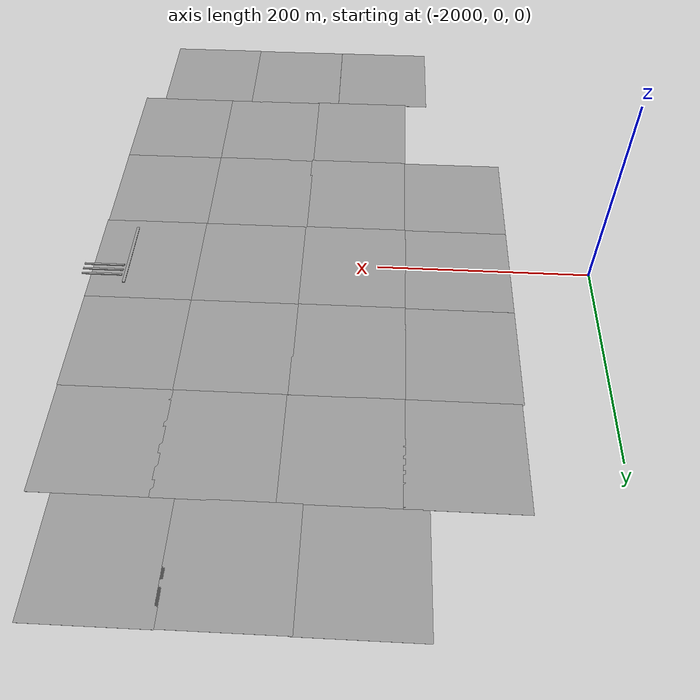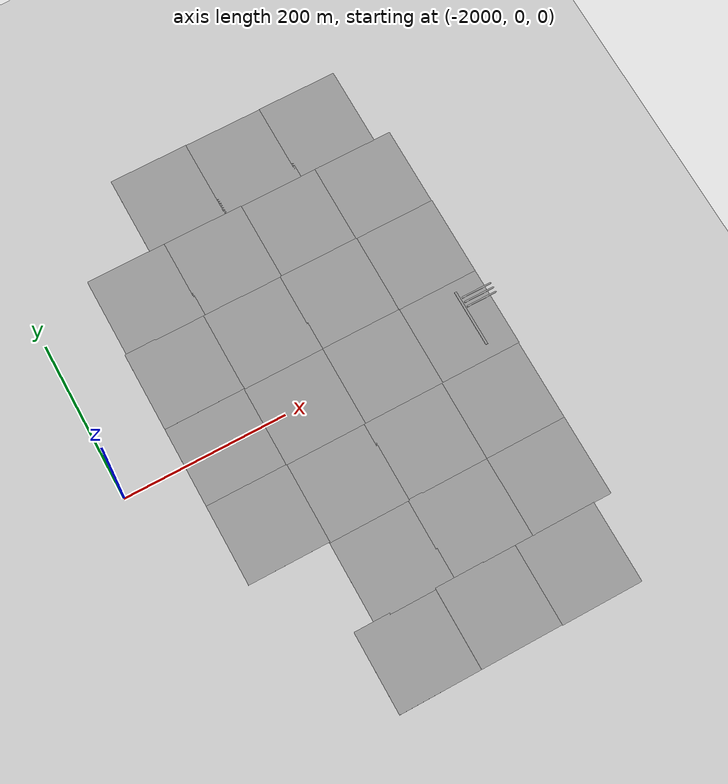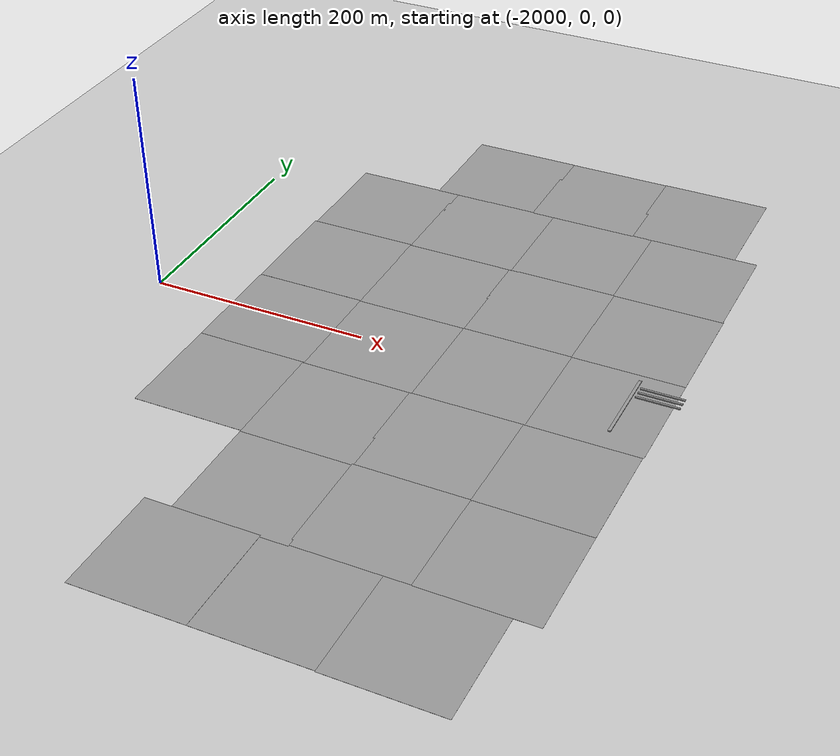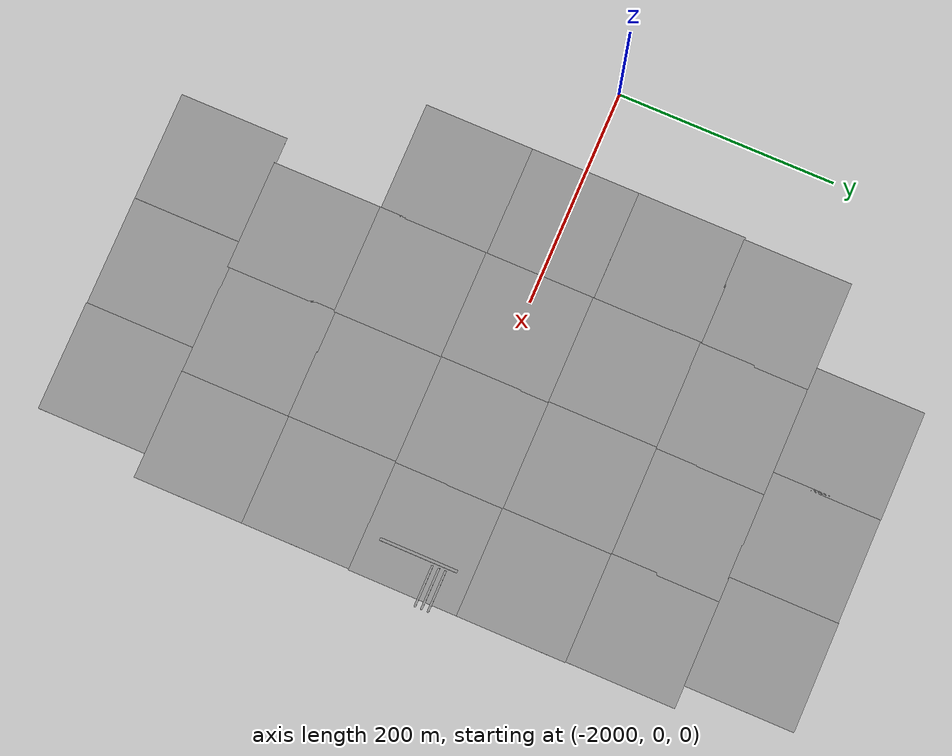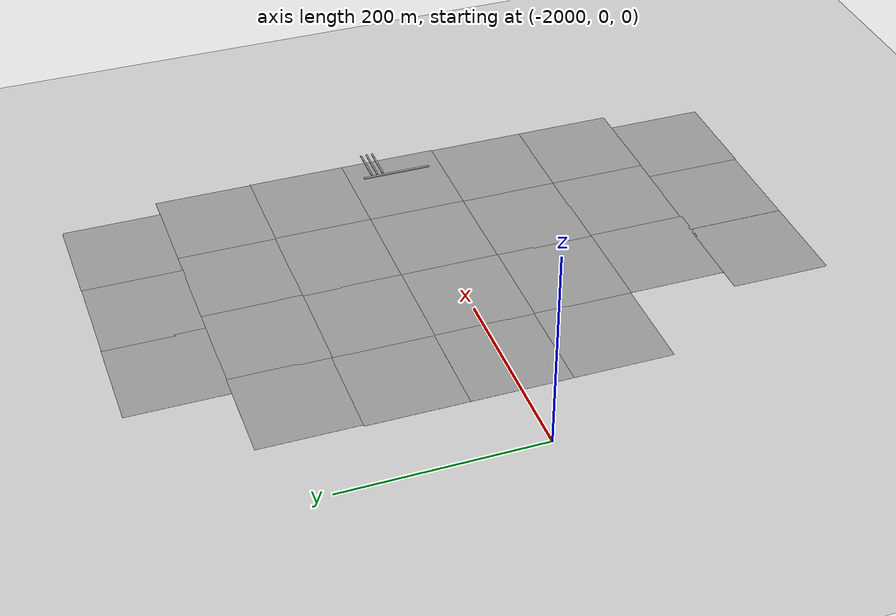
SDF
<sdf version="1.7">
 <world name="default">
  <model name="ground_plane">
   <static>1</static>
   <link name="link">
    <collision name="collision">
     <geometry><plane><normal>0 0 1</normal><size>100 100</size></plane></geometry>
     <surface><friction><ode><mu>100</mu><mu2>50</mu2></ode></friction></surface>
    </collision>
    <visual name="visual">
     <cast_shadows>0</cast_shadows>
     <geometry><plane><normal>0 0 1</normal><size>100 100</size></plane></geometry>
     <material>
      <script><uri>file://media/materials/scripts/gazebo.material</uri><name>Gazebo/Grey</name></script>
     </material>
    </visual>
   </link>
  </model>
  <model name="ground_plane_164">
   <static>1</static>
   <link name="link">
    <collision name="collision">
     <geometry><plane><normal>0 0 1</normal><size>100 100</size></plane></geometry>
     <surface>
      <contact><collide_bitmask>65535</collide_bitmask></contact>
      <friction><ode><mu>100</mu><mu2>50</mu2></ode></friction>
     </surface>
    </collision>
    <visual name="visual">
     <cast_shadows>0</cast_shadows>
     <geometry><plane><normal>0 0 1</normal><size>100 100</size></plane></geometry>
     <material>
      <script><uri>file://media/materials/scripts/gazebo.material</uri><name>Gazebo/Grey</name></script>
     </material>
    </visual>
   </link>
   <pose>-1578.55 198.146 0 0 -0 0</pose>
  </model>
  <model name="ground_plane_165">
   <static>1</static>
   <link name="link">
    <collision name="collision">
     <geometry><plane><normal>0 0 1</normal><size>100 100</size></plane></geometry>
     <surface>
      <contact><collide_bitmask>65535</collide_bitmask></contact>
      <friction><ode><mu>100</mu><mu2>50</mu2></ode></friction>
     </surface>
    </collision>
    <visual name="visual">
     <cast_shadows>0</cast_shadows>
     <geometry><plane><normal>0 0 1</normal><size>100 100</size></plane></geometry>
     <material>
      <script><uri>file://media/materials/scripts/gazebo.material</uri><name>Gazebo/Grey</name></script>
     </material>
    </visual>
   </link>
   <pose>-1577.94 98.2692 0 0 -0 0</pose>
  </model>
  <model name="ground_plane_166">
   <static>1</static>
   <link name="link">
    <collision name="collision">
     <geometry><plane><normal>0 0 1</normal><size>100 100</size></plane></geometry>
     <surface>
      <contact><collide_bitmask>65535</collide_bitmask></contact>
      <friction><ode><mu>100</mu><mu2>50</mu2></ode></friction>
     </surface>
    </collision>
    <visual name="visual">
     <cast_shadows>0</cast_shadows>
     <geometry><plane><normal>0 0 1</normal><size>100 100</size></plane></geometry>
     <material>
      <script><uri>file://media/materials/scripts/gazebo.material</uri><name>Gazebo/Grey</name></script>
     </material>
    </visual>
   </link>
   <pose>-1577.94 -1.23839 0 0 -0 0</pose>
  </model>
  <model name="ground_plane_167">
   <static>1</static>
   <link name="link">
    <collision name="collision">
     <geometry><plane><normal>0 0 1</normal><size>100 100</size></plane></geometry>
     <surface>
      <contact><collide_bitmask>65535</collide_bitmask></contact>
      <friction><ode><mu>100</mu><mu2>50</mu2></ode></friction>
     </surface>
    </collision>
    <visual name="visual">
     <cast_shadows>0</cast_shadows>
     <geometry><plane><normal>0 0 1</normal><size>100 100</size></plane></geometry>
     <material>
      <script><uri>file://media/materials/scripts/gazebo.material</uri><name>Gazebo/Grey</name></script>
     </material>
    </visual>
   </link>
   <pose>-1578.82 -100.961 0 0 -0 0</pose>
  </model>
  <model name="ground_plane_168">
   <static>1</static>
   <link name="link">
    <collision name="collision">
     <geometry><plane><normal>0 0 1</normal><size>100 100</size></plane></geometry>
     <surface>
      <contact><collide_bitmask>65535</collide_bitmask></contact>
      <friction><ode><mu>100</mu><mu2>50</mu2></ode></friction>
     </surface>
    </collision>
    <visual name="visual">
     <cast_shadows>0</cast_shadows>
     <geometry><plane><normal>0 0 1</normal><size>100 100</size></plane></geometry>
     <material>
      <script><uri>file://media/materials/scripts/gazebo.material</uri><name>Gazebo/Grey</name></script>
     </material>
    </visual>
   </link>
   <pose>-1578.82 -200.5 0 0 -0 0</pose>
  </model>
  <model name="ground_plane_169">
   <static>1</static>
   <link name="link">
    <collision name="collision">
     <geometry><plane><normal>0 0 1</normal><size>100 100</size></plane></geometry>
     <surface>
      <contact><collide_bitmask>65535</collide_bitmask></contact>
      <friction><ode><mu>100</mu><mu2>50</mu2></ode></friction>
     </surface>
    </collision>
    <visual name="visual">
     <cast_shadows>0</cast_shadows>
     <geometry><plane><normal>0 0 1</normal><size>100 100</size></plane></geometry>
     <material>
      <script><uri>file://media/materials/scripts/gazebo.material</uri><name>Gazebo/Grey</name></script>
     </material>
    </visual>
   </link>
   <pose>-1676.42 198.193 0 0 -0 0</pose>
  </model>
  <model name="ground_plane_170">
   <static>1</static>
   <link name="link">
    <collision name="collision">
     <geometry><plane><normal>0 0 1</normal><size>100 100</size></plane></geometry>
     <surface>
      <contact><collide_bitmask>65535</collide_bitmask></contact>
      <friction><ode><mu>100</mu><mu2>50</mu2></ode></friction>
     </surface>
    </collision>
    <visual name="visual">
     <cast_shadows>0</cast_shadows>
     <geometry><plane><normal>0 0 1</normal><size>100 100</size></plane></geometry>
     <material>
      <script><uri>file://media/materials/scripts/gazebo.material</uri><name>Gazebo/Grey</name></script>
     </material>
    </visual>
   </link>
   <pose>-1677.63 98.7032 0 0 -0 0</pose>
  </model>
  <model name="ground_plane_171">
   <static>1</static>
   <link name="link">
    <collision name="collision">
     <geometry><plane><normal>0 0 1</normal><size>100 100</size></plane></geometry>
     <surface>
      <contact><collide_bitmask>65535</collide_bitmask></contact>
      <friction><ode><mu>100</mu><mu2>50</mu2></ode></friction>
     </surface>
    </collision>
    <visual name="visual">
     <cast_shadows>0</cast_shadows>
     <geometry><plane><normal>0 0 1</normal><size>100 100</size></plane></geometry>
     <material>
      <script><uri>file://media/materials/scripts/gazebo.material</uri><name>Gazebo/Grey</name></script>
     </material>
    </visual>
   </link>
   <pose>-1677.39 -1.24015 0 0 -0 0</pose>
  </model>
  <model name="ground_plane_172">
   <static>1</static>
   <link name="link">
    <collision name="collision">
     <geometry><plane><normal>0 0 1</normal><size>100 100</size></plane></geometry>
     <surface>
      <contact><collide_bitmask>65535</collide_bitmask></contact>
      <friction><ode><mu>100</mu><mu2>50</mu2></ode></friction>
     </surface>
    </collision>
    <visual name="visual">
     <cast_shadows>0</cast_shadows>
     <geometry><plane><normal>0 0 1</normal><size>100 100</size></plane></geometry>
     <material>
      <script><uri>file://media/materials/scripts/gazebo.material</uri><name>Gazebo/Grey</name></script>
     </material>
    </visual>
   </link>
   <pose>-1678.6 -101.059 0 0 -0 0</pose>
  </model>
  <model name="ground_plane_173">
   <static>1</static>
   <link name="link">
    <collision name="collision">
     <geometry><plane><normal>0 0 1</normal><size>100 100</size></plane></geometry>
     <surface>
      <contact><collide_bitmask>65535</collide_bitmask></contact>
      <friction><ode><mu>100</mu><mu2>50</mu2></ode></friction>
     </surface>
    </collision>
    <visual name="visual">
     <cast_shadows>0</cast_shadows>
     <geometry><plane><normal>0 0 1</normal><size>100 100</size></plane></geometry>
     <material>
      <script><uri>file://media/materials/scripts/gazebo.material</uri><name>Gazebo/Grey</name></script>
     </material>
    </visual>
   </link>
   <pose>-1678.53 -200.101 0 0 -0 0</pose>
  </model>
  <model name="ground_plane_174">
   <static>1</static>
   <link name="link">
    <collision name="collision">
     <geometry><plane><normal>0 0 1</normal><size>100 100</size></plane></geometry>
     <surface>
      <contact><collide_bitmask>65535</collide_bitmask></contact>
      <friction><ode><mu>100</mu><mu2>50</mu2></ode></friction>
     </surface>
    </collision>
    <visual name="visual">
     <cast_shadows>0</cast_shadows>
     <geometry><plane><normal>0 0 1</normal><size>100 100</size></plane></geometry>
     <material>
      <script><uri>file://media/materials/scripts/gazebo.material</uri><name>Gazebo/Grey</name></script>
     </material>
    </visual>
   </link>
   <pose>-1775.74 198.103 0 0 -0 0</pose>
  </model>
  <model name="ground_plane_175">
   <static>1</static>
   <link name="link">
    <collision name="collision">
     <geometry><plane><normal>0 0 1</normal><size>100 100</size></plane></geometry>
     <surface>
      <contact><collide_bitmask>65535</collide_bitmask></contact>
      <friction><ode><mu>100</mu><mu2>50</mu2></ode></friction>
     </surface>
    </collision>
    <visual name="visual">
     <cast_shadows>0</cast_shadows>
     <geometry><plane><normal>0 0 1</normal><size>100 100</size></plane></geometry>
     <material>
      <script><uri>file://media/materials/scripts/gazebo.material</uri><name>Gazebo/Grey</name></script>
     </material>
    </visual>
   </link>
   <pose>-1776.34 98.4097 0 0 -0 0</pose>
  </model>
  <model name="ground_plane_176">
   <static>1</static>
   <link name="link">
    <collision name="collision">
     <geometry><plane><normal>0 0 1</normal><size>100 100</size></plane></geometry>
     <surface>
      <contact><collide_bitmask>65535</collide_bitmask></contact>
      <friction><ode><mu>100</mu><mu2>50</mu2></ode></friction>
     </surface>
    </collision>
    <visual name="visual">
     <cast_shadows>0</cast_shadows>
     <geometry><plane><normal>0 0 1</normal><size>100 100</size></plane></geometry>
     <material>
      <script><uri>file://media/materials/scripts/gazebo.material</uri><name>Gazebo/Grey</name></script>
     </material>
    </visual>
   </link>
   <pose>-1776.61 -1.57383 0 0 -0 0</pose>
  </model>
  <model name="ground_plane_177">
   <static>1</static>
   <link name="link">
    <collision name="collision">
     <geometry><plane><normal>0 0 1</normal><size>100 100</size></plane></geometry>
     <surface>
      <contact><collide_bitmask>65535</collide_bitmask></contact>
      <friction><ode><mu>100</mu><mu2>50</mu2></ode></friction>
     </surface>
    </collision>
    <visual name="visual">
     <cast_shadows>0</cast_shadows>
     <geometry><plane><normal>0 0 1</normal><size>100 100</size></plane></geometry>
     <material>
      <script><uri>file://media/materials/scripts/gazebo.material</uri><name>Gazebo/Grey</name></script>
     </material>
    </visual>
   </link>
   <pose>-1777.02 -101.569 0 0 -0 0</pose>
  </model>
  <model name="ground_plane_178">
   <static>1</static>
   <link name="link">
    <collision name="collision">
     <geometry><plane><normal>0 0 1</normal><size>100 100</size></plane></geometry>
     <surface>
      <contact><collide_bitmask>65535</collide_bitmask></contact>
      <friction><ode><mu>100</mu><mu2>50</mu2></ode></friction>
     </surface>
    </collision>
    <visual name="visual">
     <cast_shadows>0</cast_shadows>
     <geometry><plane><normal>0 0 1</normal><size>100 100</size></plane></geometry>
     <material>
      <script><uri>file://media/materials/scripts/gazebo.material</uri><name>Gazebo/Grey</name></script>
     </material>
    </visual>
   </link>
   <pose>-1777.02 -201.341 0 0 -0 0</pose>
  </model>
  <model name="ground_plane_179">
   <static>1</static>
   <link name="link">
    <collision name="collision">
     <geometry><plane><normal>0 0 1</normal><size>100 100</size></plane></geometry>
     <surface>
      <contact><collide_bitmask>65535</collide_bitmask></contact>
      <friction><ode><mu>100</mu><mu2>50</mu2></ode></friction>
     </surface>
    </collision>
    <visual name="visual">
     <cast_shadows>0</cast_shadows>
     <geometry><plane><normal>0 0 1</normal><size>100 100</size></plane></geometry>
     <material>
      <script><uri>file://media/materials/scripts/gazebo.material</uri><name>Gazebo/Grey</name></script>
     </material>
    </visual>
   </link>
   <pose>-1874.13 198.241 0 0 -0 0</pose>
  </model>
  <model name="ground_plane_180">
   <static>1</static>
   <link name="link">
    <collision name="collision">
     <geometry><plane><normal>0 0 1</normal><size>100 100</size></plane></geometry>
     <surface>
      <contact><collide_bitmask>65535</collide_bitmask></contact>
      <friction><ode><mu>100</mu><mu2>50</mu2></ode></friction>
     </surface>
    </collision>
    <visual name="visual">
     <cast_shadows>0</cast_shadows>
     <geometry><plane><normal>0 0 1</normal><size>100 100</size></plane></geometry>
     <material>
      <script><uri>file://media/materials/scripts/gazebo.material</uri><name>Gazebo/Grey</name></script>
     </material>
    </visual>
   </link>
   <pose>-1875.91 99.2126 0 0 -0 0</pose>
  </model>
  <model name="ground_plane_181">
   <static>1</static>
   <link name="link">
    <collision name="collision">
     <geometry><plane><normal>0 0 1</normal><size>100 100</size></plane></geometry>
     <surface>
      <contact><collide_bitmask>65535</collide_bitmask></contact>
      <friction><ode><mu>100</mu><mu2>50</mu2></ode></friction>
     </surface>
    </collision>
    <visual name="visual">
     <cast_shadows>0</cast_shadows>
     <geometry><plane><normal>0 0 1</normal><size>100 100</size></plane></geometry>
     <material>
      <script><uri>file://media/materials/scripts/gazebo.material</uri><name>Gazebo/Grey</name></script>
     </material>
    </visual>
   </link>
   <pose>-1875.91 -0.803454 0 0 -0 0</pose>
  </model>
  <model name="ground_plane_182">
   <static>1</static>
   <link name="link">
    <collision name="collision">
     <geometry><plane><normal>0 0 1</normal><size>100 100</size></plane></geometry>
     <surface>
      <contact><collide_bitmask>65535</collide_bitmask></contact>
      <friction><ode><mu>100</mu><mu2>50</mu2></ode></friction>
     </surface>
    </collision>
    <visual name="visual">
     <cast_shadows>0</cast_shadows>
     <geometry><plane><normal>0 0 1</normal><size>100 100</size></plane></geometry>
     <material>
      <script><uri>file://media/materials/scripts/gazebo.material</uri><name>Gazebo/Grey</name></script>
     </material>
    </visual>
   </link>
   <pose>-1875.91 -100.578 0 0 -0 0</pose>
  </model>
  <model name="ground_plane_232">
   <static>1</static>
   <link name="link">
    <collision name="collision">
     <geometry><plane><normal>0 0 1</normal><size>100 100</size></plane></geometry>
     <surface>
      <contact><collide_bitmask>65535</collide_bitmask></contact>
      <friction><ode><mu>100</mu><mu2>50</mu2></ode></friction>
     </surface>
    </collision>
    <visual name="visual">
     <cast_shadows>0</cast_shadows>
     <geometry><plane><normal>0 0 1</normal><size>100 100</size></plane></geometry>
     <material>
      <script><uri>file://media/materials/scripts/gazebo.material</uri><name>Gazebo/Grey</name></script>
     </material>
    </visual>
   </link>
   <pose>-1600.82 -300.059 0 0 -0 0</pose>
  </model>
  <model name="ground_plane_233">
   <static>1</static>
   <link name="link">
    <collision name="collision">
     <geometry><plane><normal>0 0 1</normal><size>100 100</size></plane></geometry>
     <surface>
      <contact><collide_bitmask>65535</collide_bitmask></contact>
      <friction><ode><mu>100</mu><mu2>50</mu2></ode></friction>
     </surface>
    </collision>
    <visual name="visual">
     <cast_shadows>0</cast_shadows>
     <geometry><plane><normal>0 0 1</normal><size>100 100</size></plane></geometry>
     <material>
      <script><uri>file://media/materials/scripts/gazebo.material</uri><name>Gazebo/Grey</name></script>
     </material>
    </visual>
   </link>
   <pose>-1700.78 -299.432 0 0 -0 0</pose>
  </model>
  <model name="ground_plane_234">
   <static>1</static>
   <link name="link">
    <collision name="collision">
     <geometry><plane><normal>0 0 1</normal><size>100 100</size></plane></geometry>
     <surface>
      <contact><collide_bitmask>65535</collide_bitmask></contact>
      <friction><ode><mu>100</mu><mu2>50</mu2></ode></friction>
     </surface>
    </collision>
    <visual name="visual">
     <cast_shadows>0</cast_shadows>
     <geometry><plane><normal>0 0 1</normal><size>100 100</size></plane></geometry>
     <material>
      <script><uri>file://media/materials/scripts/gazebo.material</uri><name>Gazebo/Grey</name></script>
     </material>
    </visual>
   </link>
   <pose>-1800.89 -299.432 0 0 -0 0</pose>
  </model>
  <model name="ground_plane_272">
   <static>1</static>
   <link name="link">
    <collision name="collision">
     <geometry><plane><normal>0 0 1</normal><size>100 100</size></plane></geometry>
     <surface>
      <contact><collide_bitmask>65535</collide_bitmask></contact>
      <friction><ode><mu>100</mu><mu2>50</mu2></ode></friction>
     </surface>
    </collision>
    <visual name="visual">
     <cast_shadows>0</cast_shadows>
     <geometry><plane><normal>0 0 1</normal><size>100 100</size></plane></geometry>
     <material>
      <script><uri>file://media/materials/scripts/gazebo.material</uri><name>Gazebo/Grey</name></script>
     </material>
    </visual>
   </link>
   <pose>-1599.29 297.903 0 0 -0 0</pose>
  </model>
  <model name="ground_plane_273">
   <static>1</static>
   <link name="link">
    <collision name="collision">
     <geometry><plane><normal>0 0 1</normal><size>100 100</size></plane></geometry>
     <surface>
      <contact><collide_bitmask>65535</collide_bitmask></contact>
      <friction><ode><mu>100</mu><mu2>50</mu2></ode></friction>
     </surface>
    </collision>
    <visual name="visual">
     <cast_shadows>0</cast_shadows>
     <geometry><plane><normal>0 0 1</normal><size>100 100</size></plane></geometry>
     <material>
      <script><uri>file://media/materials/scripts/gazebo.material</uri><name>Gazebo/Grey</name></script>
     </material>
    </visual>
   </link>
   <pose>-1696.84 297.435 0 0 -0 0</pose>
  </model>
  <model name="ground_plane_274">
   <static>1</static>
   <link name="link">
    <collision name="collision">
     <geometry><plane><normal>0 0 1</normal><size>100 100</size></plane></geometry>
     <surface>
      <contact><collide_bitmask>65535</collide_bitmask></contact>
      <friction><ode><mu>100</mu><mu2>50</mu2></ode></friction>
     </surface>
    </collision>
    <visual name="visual">
     <cast_shadows>0</cast_shadows>
     <geometry><plane><normal>0 0 1</normal><size>100 100</size></plane></geometry>
     <material>
      <script><uri>file://media/materials/scripts/gazebo.material</uri><name>Gazebo/Grey</name></script>
     </material>
    </visual>
   </link>
   <pose>-1794.66 297.754 0 0 -0 0</pose>
  </model>
  <model name="runway_marker_30m">
   <pose>-1540 28 5 0 -0 0</pose>
   <link name="Wall_2">
    <collision name="Wall_2_Collision">
     <geometry><box><size>38.226 1.8 1</size></box></geometry>
     <pose>0 0 0.05 0 -0 0</pose>
    </collision>
    <visual name="Wall_2_Visual">
     <pose>0 0 0.05 0 -0 0</pose>
     <geometry><box><size>38.226 1.8 1</size></box></geometry>
     <material>
      <script><uri>file://media/materials/scripts/gazebo.material</uri><name>Gazebo/Grey</name></script>
      <ambient>1 1 1 1</ambient>
     </material>
     <meta><layer>0</layer></meta>
    </visual>
    <pose>0 -2.825 0 0 -0 0</pose>
   </link>
   <static>1</static>
  </model>
  <model name="runway_segment_6m_1">
   <link name="Wall_0">
    <pose>-2.13425 4.35124 0 0 0 -0.022056</pose>
    <inertial>
     <inertia><ixx>0</ixx><ixy>0</ixy><ixz>0</ixz><iyy>0</iyy><iyz>0</iyz><izz>0</izz></inertia>
     <mass>0</mass>
    </inertial>
    <visual name="Wall_0_Visual">
     <pose>0 0 0.05 0 -0 0</pose>
     <geometry><box><size>71.3041 2.63472 1</size></box></geometry>
     <material>
      <script><uri>file://media/materials/scripts/gazebo.material</uri><name>Gazebo/Grey</name></script>
      <ambient>1 1 1 1</ambient>
      <shader type="pixel"/>
     </material>
     <meta><layer>0</layer></meta>
    </visual>
    <collision name="Wall_0_Collision">
     <pose>0 0 0.05 0 -0 0</pose>
     <geometry><box><size>71.3041 2.63472 1</size></box></geometry>
     <surface>
      <friction>
       <ode><mu>1</mu><mu2>1</mu2><fdir1>0 0 0</fdir1><slip1>0</slip1><slip2>0</slip2></ode>
       <torsional>
        <coefficient>1</coefficient>
        <patch_radius>0</patch_radius>
        <surface_radius>0</surface_radius>
        <use_patch_radius>1</use_patch_radius>
        <ode><slip>0</slip></ode>
       </torsional>
      </friction>
      <bounce><restitution_coefficient>0</restitution_coefficient><threshold>1e+06</threshold></bounce>
      <contact>
       <collide_without_contact>0</collide_without_contact>
       <collide_without_contact_bitmask>1</collide_without_contact_bitmask>
       <collide_bitmask>1</collide_bitmask>
       <ode>
        <soft_cfm>0</soft_cfm>
        <soft_erp>0.2</soft_erp>
        <kp>1e+13</kp>
        <kd>1</kd>
        <max_vel>0.01</max_vel>
        <min_depth>0</min_depth>
       </ode>
       <bullet>
        <split_impulse>1</split_impulse>
        <split_impulse_penetration_threshold>-0.01</split_impulse_penetration_threshold>
        <soft_cfm>0</soft_cfm>
        <soft_erp>0.2</soft_erp>
        <kp>1e+13</kp>
        <kd>1</kd>
       </bullet>
      </contact>
     </surface>
    </collision>
   </link>
   <static>1</static>
   <pose>-1566.69 -3.30161 5 0 0 -1.54857</pose>
  </model>
  <model name="runway_marker_30m_clone">
   <pose>-1540 22 5 0 -0 0</pose>
   <link name="Wall_2">
    <collision name="Wall_2_Collision">
     <geometry><box><size>38.226 1.8 1</size></box></geometry>
     <pose>0 0 0.05 0 -0 0</pose>
    </collision>
    <visual name="Wall_2_Visual">
     <pose>0 0 0.05 0 -0 0</pose>
     <geometry><box><size>38.226 1.8 1</size></box></geometry>
     <material>
      <script><uri>file://media/materials/scripts/gazebo.material</uri><name>Gazebo/Grey</name></script>
      <ambient>1 1 1 1</ambient>
     </material>
     <meta><layer>0</layer></meta>
    </visual>
    <pose>0 -2.825 0 0 -0 0</pose>
   </link>
   <static>1</static>
  </model>
  <model name="runway_marker_30m_clone_0">
   <pose>-1540 16 5 0 -0 0</pose>
   <link name="Wall_2">
    <collision name="Wall_2_Collision">
     <geometry><box><size>38.226 1.8 1</size></box></geometry>
     <pose>0 0 0.05 0 -0 0</pose>
    </collision>
    <visual name="Wall_2_Visual">
     <pose>0 0 0.05 0 -0 0</pose>
     <geometry><box><size>38.226 1.8 1</size></box></geometry>
     <material>
      <script><uri>file://media/materials/scripts/gazebo.material</uri><name>Gazebo/Grey</name></script>
      <ambient>1 1 1 1</ambient>
     </material>
     <meta><layer>0</layer></meta>
    </visual>
    <pose>0 -2.825 0 0 -0 0</pose>
   </link>
   <static>1</static>
  </model>
 </world>
</sdf>
